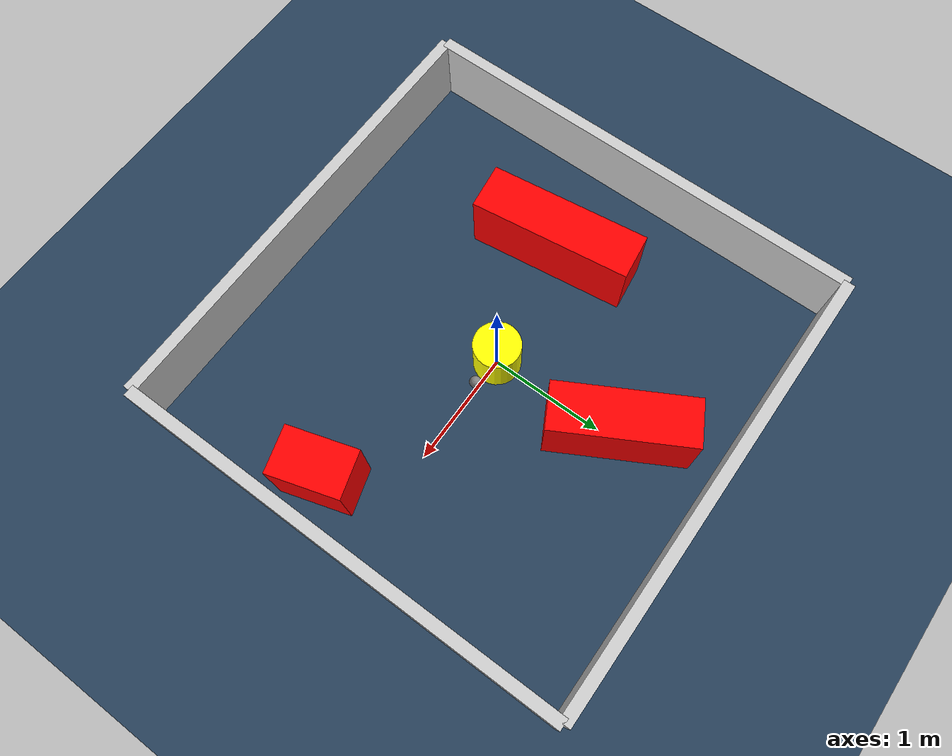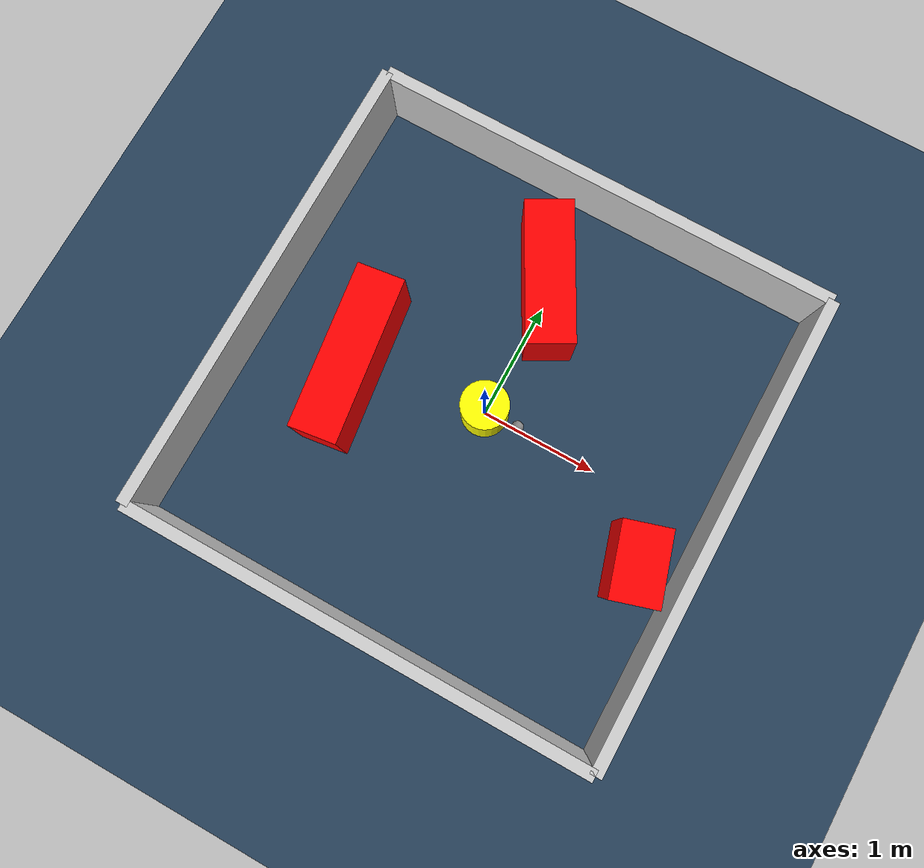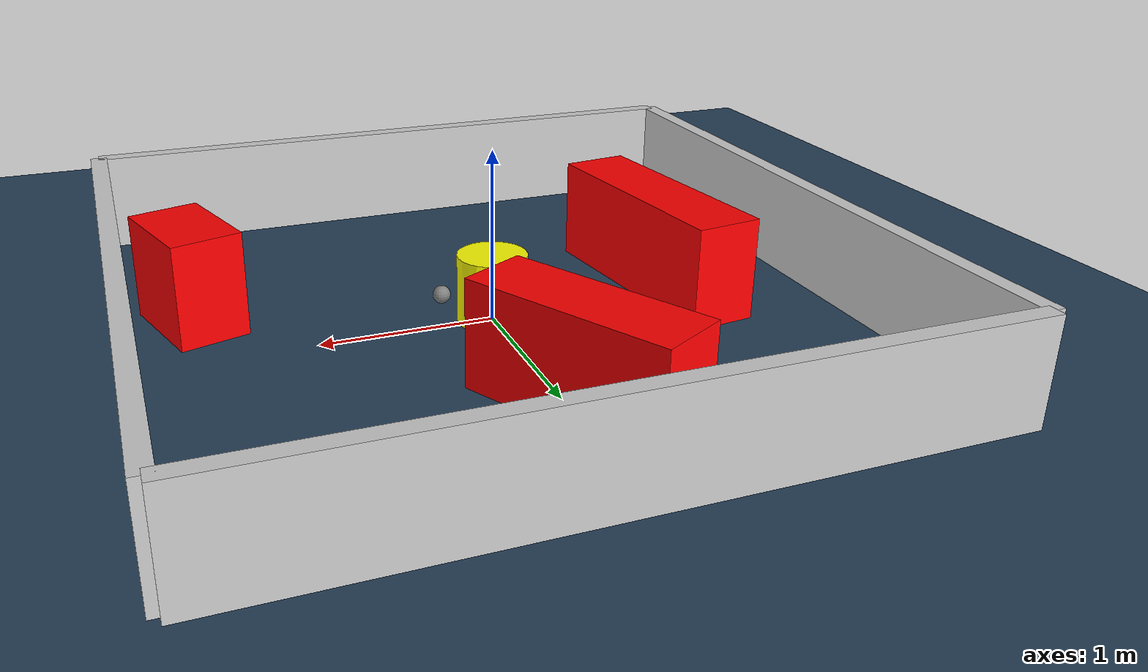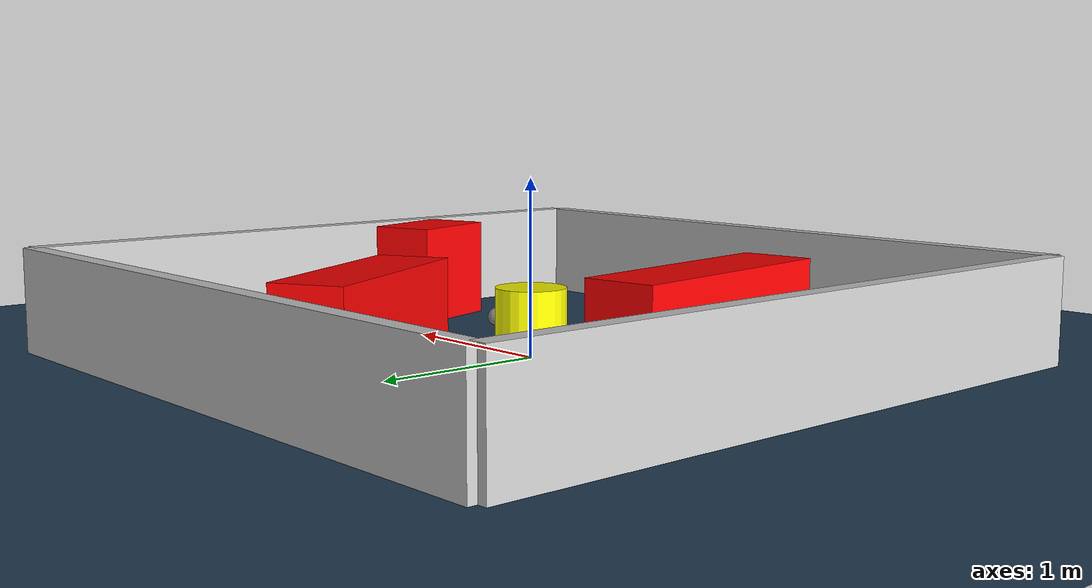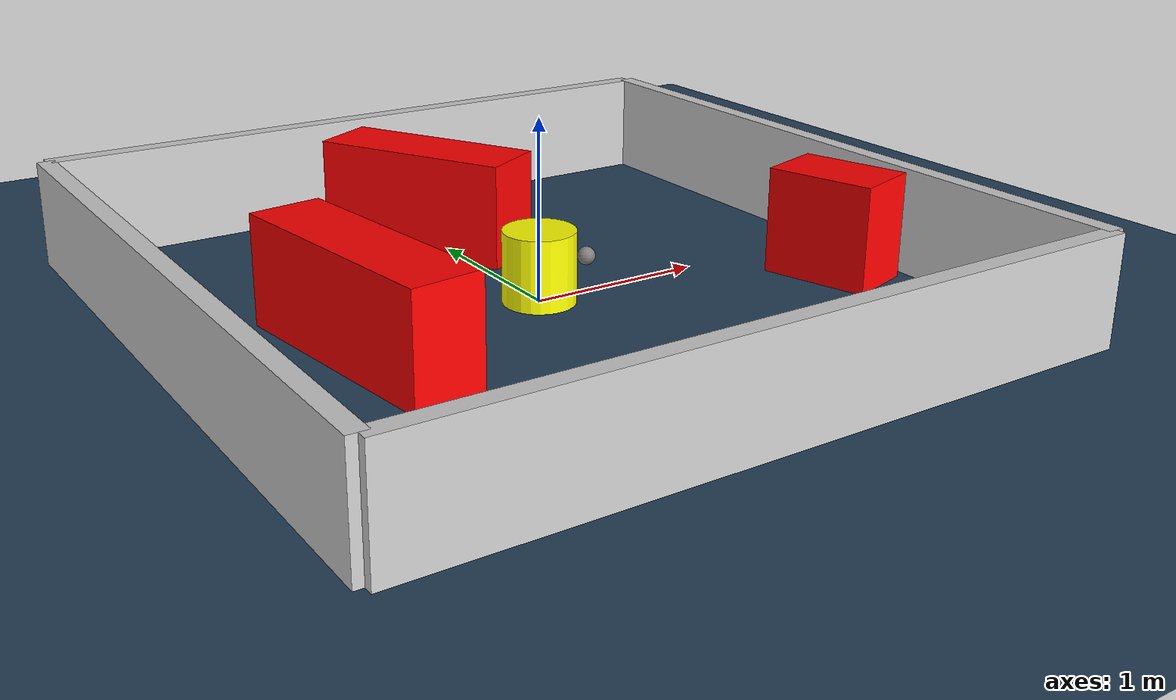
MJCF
<?xml version="1.0" ?>
<mujoco model="generated_environment">
  <option timestep="0.01" integrator="RK4" cone="elliptic"/>
  <default>
    <geom density="1"/>
  </default>
  <asset>
    <texture builtin="gradient" height="3072" rgb1="0.3 0.5 0.7" rgb2="0 0 0" type="skybox" width="512"/>
    <texture builtin="checker" height="300" mark="edge" markrgb="0.8 0.8 0.8" name="groundplane" rgb1="0.2 0.3 0.4" rgb2="0.1 0.2 0.3" type="2d" width="300"/>
    <material name="groundplane" reflectance="0.2" texrepeat="5 5" texture="groundplane" texuniform="true"/>
    <material name="robot" rgba="0.0 1.0 0.0 1"/>
  </asset>
  <worldbody>
    <light dir="0 0 -1" directional="true" pos="0 0 1.5"/>
    <geom condim="4" friction="1.0 0.005 0.001" material="groundplane" name="floor" size="0 0 0.05" type="plane"/>
    <body name="walls">
      <geom name="wall_1" condim="4" pos="-2.0 0.0 0.3" rgba="0.800000011920929 0.800000011920929 0.800000011920929 1.0" size="0.05 2.0 0.3" type="box"/>
      <geom name="wall_2" condim="4" pos="2.0 0.0 0.3" rgba="0.800000011920929 0.800000011920929 0.800000011920929 1.0" size="0.05 2.0 0.3" type="box"/>
      <geom name="wall_3" condim="4" pos="0.0 -2.0 0.3" rgba="0.800000011920929 0.800000011920929 0.800000011920929 1.0" size="2.0 0.05 0.3" type="box"/>
      <geom name="wall_4" condim="4" pos="0.0 2.0 0.3" rgba="0.800000011920929 0.800000011920929 0.800000011920929 1.0" size="2.0 0.05 0.3" type="box"/>
    </body>
    <body name="robot">
      <joint name="joint_x" type="slide" pos="0 0 0" axis="1 0 0"/>
      <joint name="joint_y" type="slide" pos="0 0 0" axis="0 1 0"/>
      <geom name="robot" type="sphere" pos="0.3 0.0 0.2" size="0.05" mass="5." friction="1.0 0.005 0.0001" condim="4" rgba="0.5 0.5 0.5 1.0"/>
      <site name="sensor_ball"/>
    </body>
    <body name="obstacle_movable_1">
      <geom name="obstacle_movable_1" condim="4" pos="0.0 0.0 0.2" euler="0 0 0.0" friction="1.0 0.005 0.001" rgba="1.0 1.0 0.0 1.0" size="0.2 0.2 0.0" type="cylinder" mass="0.1"/>
      <joint type="free"/>
    </body>
    <body name="obstacle_2_static">
      <geom name="obstacle_2_static" condim="4" pos="-0.050070767216871426 1.1506072680794215 0.3" euler="0 0 298.709896161985" friction="1.0 0.005 0.001" rgba="1 0 0 1" size="0.5901317264756311 0.2 0.3" type="box"/>
    </body>
    <body name="obstacle_3_static">
      <geom name="obstacle_3_static" condim="4" pos="-1.1114906155213862 -0.17898476278195274 0.3" euler="0 0 277.456859552032" friction="1.0 0.005 0.001" rgba="1 0 0 1" size="0.6953525012270031 0.2 0.3" type="box"/>
    </body>
    <body name="obstacle_4_static">
      <geom name="obstacle_4_static" condim="4" pos="1.608793810955739 -0.5171789228655168 0.3" euler="0 0 106.86519216801555" friction="1.0 0.005 0.001" rgba="1 0 0 1" size="0.3058332169753752 0.2 0.3" type="box"/>
    </body>
  </worldbody>
  <actuator>
    <motor name="actuator_x" joint="joint_x" gear="1" ctrlrange="-1 1"/>
    <motor name="actuator_y" joint="joint_y" gear="1" ctrlrange="-1 1"/>
  </actuator>
</mujoco>
